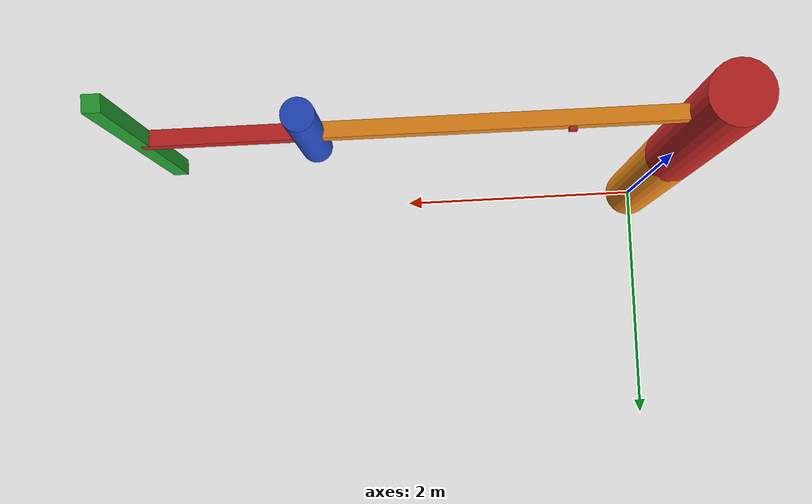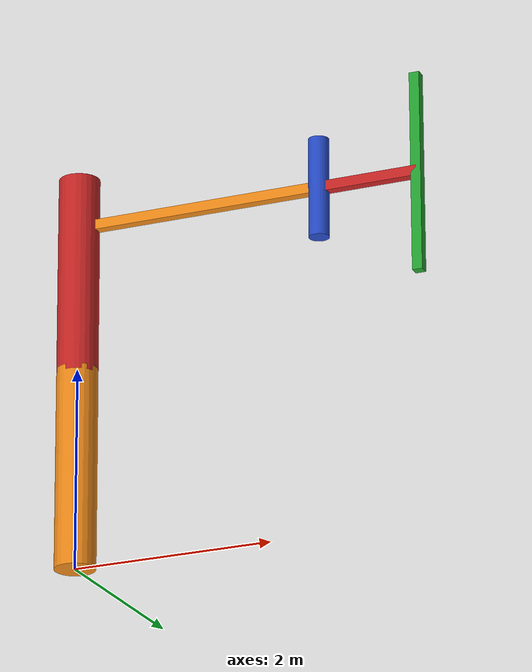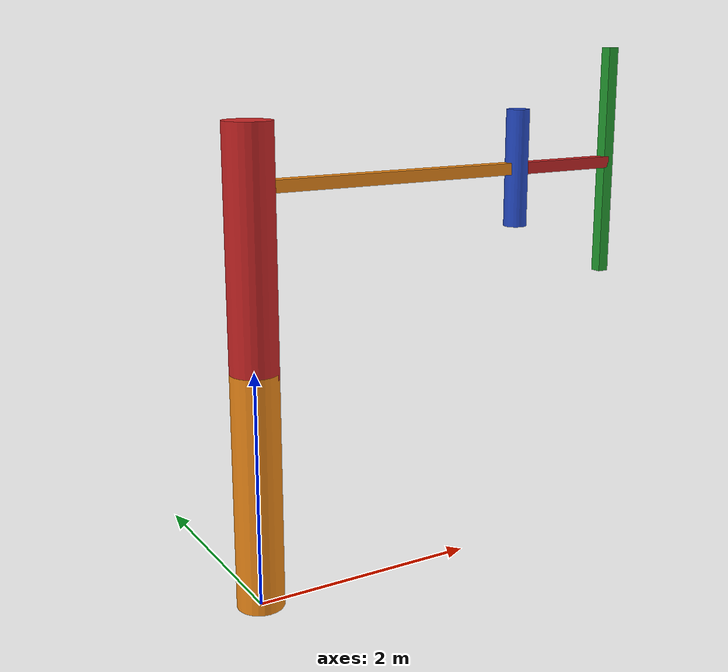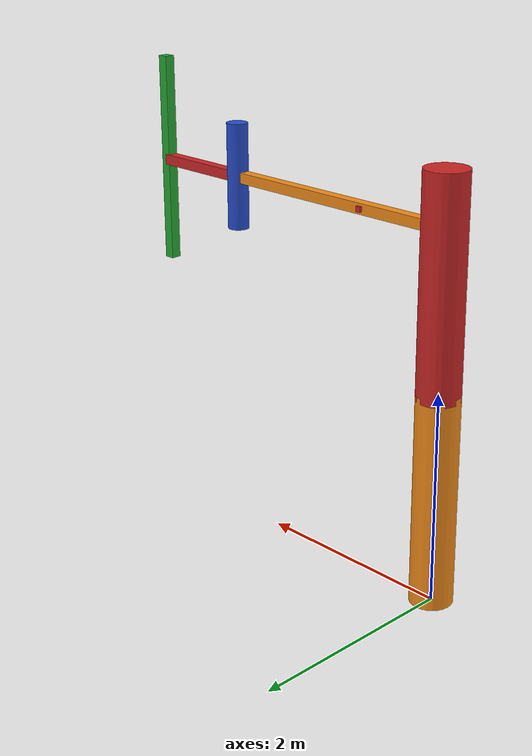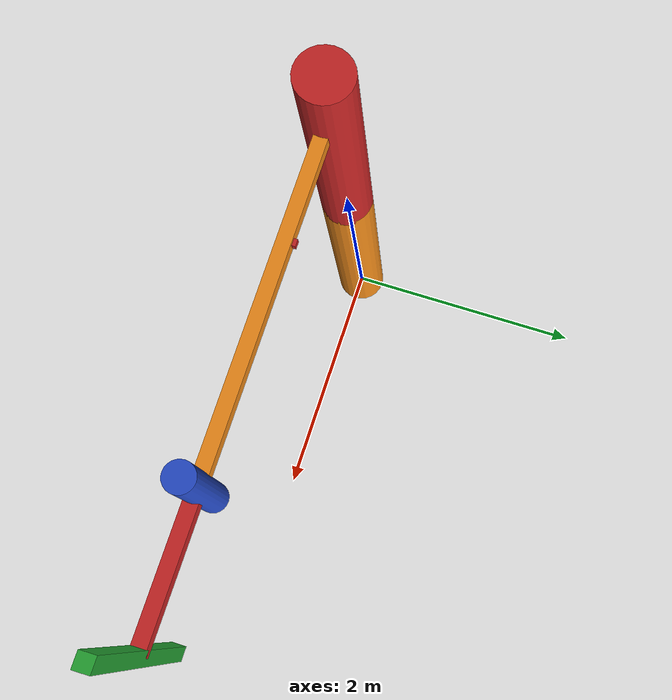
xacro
<?xml version="1.0"?>
<!-- Revolute-Revolute Manipulator -->
<robot name="scara" xmlns:xacro="http://www.ros.org/wiki/xacro">

  <!-- Constants for robot dimensions -->
  <xacro:property name="PI" value="3.1415926535897931"/>
  <xacro:property name="mass" value="1" /> <!-- arbitrary value for mass -->
  <xacro:property name="width" value="0.1" /> <!-- Square dimensions (widthxwidth) of beams -->
  <xacro:property name="height1" value="2" /> <!-- Link 1 -->
  <xacro:property name="height2" value="1" /> <!-- Link 2 -->
  <xacro:property name="height3" value="1" /> <!-- Link 3 -->
  <xacro:property name="camera_link" value="0.05" /> <!-- Size of square 'camera' box -->
  <xacro:property name="axel_offset" value="0.05" /> <!-- Space btw top of beam and the each joint -->

  <!-- Import all Gazebo-customization elements, including Gazebo colors -->
  <xacro:include filename="$(find scara_description)/urdf/scara.gazebo" />
  <!-- Import Rviz colors -->
  <xacro:include filename="$(find scara_description)/urdf/materials.xacro" />

  <!-- Used for fixing robot to Gazebo 'base_link' -->
  <link name="world"/>

  <joint name="fixed" type="fixed">
    <parent link="world"/>
    <child link="link1"/>
  </joint>

  <!-- Base Link -->
  <link name="link1">
    <collision>
      <origin xyz="0 0 ${height1/2}" rpy="0 0 0"/>
      <geometry>
	 <cylinder length="${height1}" radius="0.2"/>
      </geometry>
    </collision>

    <visual>
      <origin xyz="0 0 ${height1/2}" rpy="0 0 0"/>
      <geometry>
	 <cylinder length="${height1}" radius="0.2"/>
      </geometry>
      <material name="orange"/>
    </visual>

    <inertial>
      <origin xyz="0 0 ${height1/2}" rpy="0 0 0"/>
      <mass value="${mass}"/>
      <inertia
	  ixx="${mass / 12.0 * (width*width + height1*height1)}" ixy="0.0" ixz="0.0"
	  iyy="${mass / 12.0 * (height1*height1 + width*width)}" iyz="0.0"
	  izz="${mass / 12.0 * (width*width + width*width)}"/>
    </inertial>
  </link>

  <joint name="joint1" type="continuous">
    <parent link="link1"/>
    <child link="link2"/>
    <origin xyz="0 0 ${height1 - axel_offset}" rpy="0 0 1.570796"/>
    <axis xyz="0 0 1"/>
    <dynamics damping="0.7"/>
  </joint>

  <!-- Middle Link -->
  <link name="link2">
    <collision>
      <origin xyz="0 0 ${height2}" rpy="0 0 0"/>
      <geometry>
	 <cylinder length="${height1}" radius="0.2"/>
      </geometry>
    </collision>

    <visual>
      <origin xyz="0 0 ${height2}" rpy="0 0 0"/>
      <geometry>
	 <cylinder length="${height1}" radius="0.2"/>
      </geometry>
      <material name="red"/>
    </visual>

    <inertial>
      <origin xyz="0 0 ${height2}" rpy="0 0 0"/>
      <mass value="${mass}"/>
      <inertia
	  ixx="${mass / 12.0 * (width*width + height2*height2)}" ixy="0.0" ixz="0.0"
	  iyy="${mass / 12.0 * (height2*height2 + width*width)}" iyz="0.0"
	  izz="${mass / 12.0 * (width*width + width*width)}"/>
    </inertial>
  </link>

  <joint name="joint2" type="fixed">
    <parent link="link2"/>
    <child link="link3"/>
    <origin xyz="0 0 1.5" rpy="1.57 0 0"/>
    <dynamics damping="0.7"/>
  </joint>

  <link name="link3">
    <collision>
      <origin xyz="0 0 1.25" rpy="0 0 0"/>
      <geometry>
	 <box size="${width} ${width} 2.5"/>
      </geometry>
    </collision>
    <visual>
      <origin xyz="0 0 1.25" rpy="0 0 0"/>
      <geometry>
	 <box size="${width} ${width} 2.5"/>
      </geometry>
      <material name="orange"/>
    </visual>
    <inertial>
      <origin xyz="0 0 1.25" rpy="0 0 0"/>
      <mass value="${mass}"/>
      <inertia
	  ixx="${mass / 12.0 * (width*width + height3*height3)}" ixy="0.0" ixz="0.0"
	  iyy="${mass / 12.0 * (height3*height3 + width*width)}" iyz="0.0"
	  izz="${mass / 12.0 * (width*width + width*width)}"/>
    </inertial>
  </link>

  <joint name="joint3" type="revolute">
    <parent link="link3"/>
    <child link="link4"/>
    <origin xyz="0 1.5 2.5" rpy="1.57 0 0"/>
    <axis xyz="0 0 1"/>
    <limit effort="100" lower="-1.57" upper="1.57" velocity="1"/>
    <dynamics damping="0.7"/>
  </joint>

  <link name="link4">
    <collision>
      <origin xyz="0 0 1.5" rpy="0 0 0"/>
      <geometry>
	 <cylinder length="1" radius="${width}"/>
      </geometry>
    </collision>

    <visual>
      <origin xyz="0 0 1.5" rpy="0 0 0"/>
      <geometry>
	 <cylinder length="1" radius="${width}"/>
      </geometry>
      <material name="blue"/>
    </visual>
    <inertial>
      <origin xyz="0 0 1.5" rpy="0 0 0"/>
      <mass value="${mass}"/>
      <inertia
	  ixx="${mass / 12.0 * (width*width + height3*height3)}" ixy="0.0" ixz="0.0"
	  iyy="${mass / 12.0 * (height3*height3 + width*width)}" iyz="0.0"
	  izz="${mass / 12.0 * (width*width + width*width)}"/>
    </inertial>
  </link>

  <joint name="joint4" type="fixed">
    <parent link="link4"/>
    <child link="link5"/>
    <origin xyz="0 2 1.5" rpy="1.57 0 0"/>
    <dynamics damping="0.7"/>
  </joint>

  <link name="link5">
    <collision>
      <origin xyz="0 0 1.5" rpy="0 0 0"/>
      <geometry>
	 <box size="${width} ${width} 1"/>
      </geometry>
    </collision>

    <visual>
      <origin xyz="0 0 1.5" rpy="0 0 0"/>
      <geometry>
	 <box size="${width} ${width} 1"/>
      </geometry>
      <material name="red"/>
    </visual>

    <inertial>
      <origin xyz="0 0 1.5" rpy="0 0 0"/>
      <mass value="${mass}"/>
      <inertia
	  ixx="${mass / 12.0 * (width*width + height3*height3)}" ixy="0.0" ixz="0.0"
	  iyy="${mass / 12.0 * (height3*height3 + width*width)}" iyz="0.0"
	  izz="${mass / 12.0 * (width*width + width*width)}"/>
    </inertial>
  </link>

  <joint name="joint5" type="prismatic">
    <parent link="link5"/>
    <child link="link6"/>
    <origin xyz="0 2 1" rpy="1.57 0 0"/>
    <axis xyz="0 0 -1"/>
    <limit effort="100" lower="-1" upper="0" velocity="1"/>
    <dynamics damping="0.7"/>
  </joint>

  <link name="link6">
    <collision>
      <origin xyz="0 0 2" rpy="0 0 0"/>
      <geometry>
	 <box size="${width} ${width} 2"/>
      </geometry>
    </collision>

    <visual>
      <origin xyz="0 0 2" rpy="0 0 0"/>
      <geometry>
	 <box size="${width} ${width} 2"/>
      </geometry>
      <material name="green"/>
    </visual>

    <inertial>
      <origin xyz="0 0 1.5" rpy="0 0 0"/>
      <mass value="${mass}"/>
      <inertia
	  ixx="${mass / 12.0 * (width*width + height3*height3)}" ixy="0.0" ixz="0.0"
	  iyy="${mass / 12.0 * (height3*height3 + width*width)}" iyz="0.0"
	  izz="${mass / 12.0 * (width*width + width*width)}"/>
    </inertial>
  </link>

  <joint name="camera_joint" type="fixed">
    <axis xyz="0 1 0" />
    <origin xyz="${camera_link} 0 ${height3 - axel_offset*2}" rpy="0 0 0"/>
    <parent link="link3"/>
    <child link="camera_link"/>
  </joint>

  <!-- Camera -->
  <link name="camera_link">
    <collision>
      <origin xyz="0 0 0" rpy="0 0 0"/>
      <geometry>
	 <box size="${camera_link} ${camera_link} ${camera_link}"/>
      </geometry>
    </collision>

    <visual>
      <origin xyz="0 0 0" rpy="0 0 0"/>
      <geometry>
	 <box size="${camera_link} ${camera_link} ${camera_link}"/>
      </geometry>
      <material name="red"/>
    </visual>

    <inertial>
      <mass value="1e-5" />
      <origin xyz="0 0 0" rpy="0 0 0"/>
      <inertia ixx="1e-6" ixy="0" ixz="0" iyy="1e-6" iyz="0" izz="1e-6" />
    </inertial>
  </link>

  <!-- generate an optical frame http://www.ros.org/reps/rep-0103.html#suffix-frames
      so that ros and opencv can operate on the camera frame correctly -->
  <joint name="camera_optical_joint" type="fixed">
    <!-- these values have to be these values otherwise the gazebo camera image
        won't be aligned properly with the frame it is supposedly originating from -->
    <origin xyz="0 0 0" rpy="${-pi/2} 0 ${-pi/2}"/>
    <parent link="camera_link"/>
    <child link="camera_link_optical"/>
  </joint>

  <link name="camera_link_optical">
  </link>

  <transmission name="tran1">
    <type>transmission_interface/SimpleTransmission</type>
    <joint name="joint1">
      <hardwareInterface>hardware_interface/EffortJointInterface</hardwareInterface>
    </joint>
    <actuator name="motor1">
      <hardwareInterface>hardware_interface/EffortJointInterface</hardwareInterface>
      <mechanicalReduction>1</mechanicalReduction>
    </actuator>
  </transmission>

  <transmission name="tran2">
    <type>transmission_interface/SimpleTransmission</type>
    <joint name="joint3">
      <hardwareInterface>hardware_interface/EffortJointInterface</hardwareInterface>
    </joint>
    <actuator name="motor2">
      <hardwareInterface>hardware_interface/EffortJointInterface</hardwareInterface>
      <mechanicalReduction>1</mechanicalReduction>
    </actuator>
  </transmission>

  <transmission name="tran3">
    <type>transmission_interface/SimpleTransmission</type>
    <joint name="joint5">
      <hardwareInterface>hardware_interface/EffortJointInterface</hardwareInterface>
    </joint>
    <actuator name="motor3">
      <hardwareInterface>hardware_interface/EffortJointInterface</hardwareInterface>
      <mechanicalReduction>1</mechanicalReduction>
    </actuator>
  </transmission>

  <plugin name="gazebo_ros_control" filename="libgazebo_ros_control.so">
    <robotNamespace>/scara</robotNamespace>
  </plugin>

</robot>
